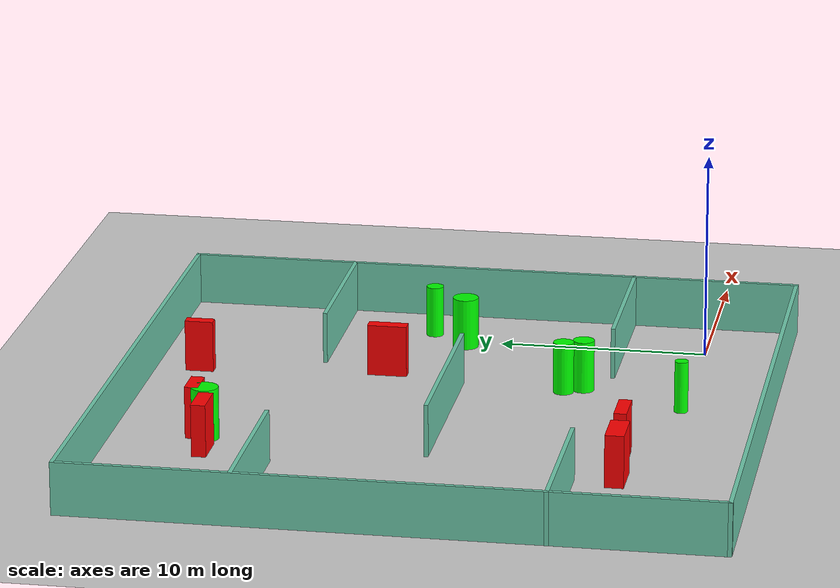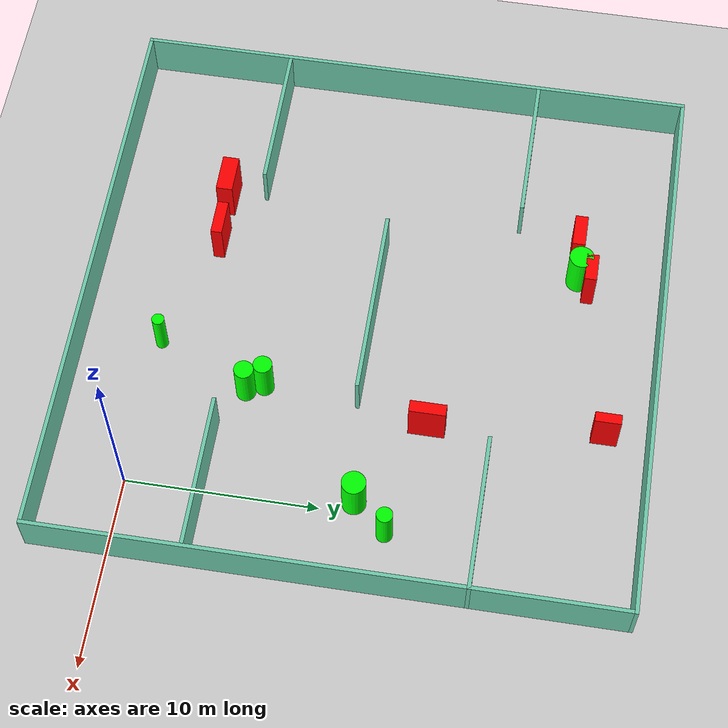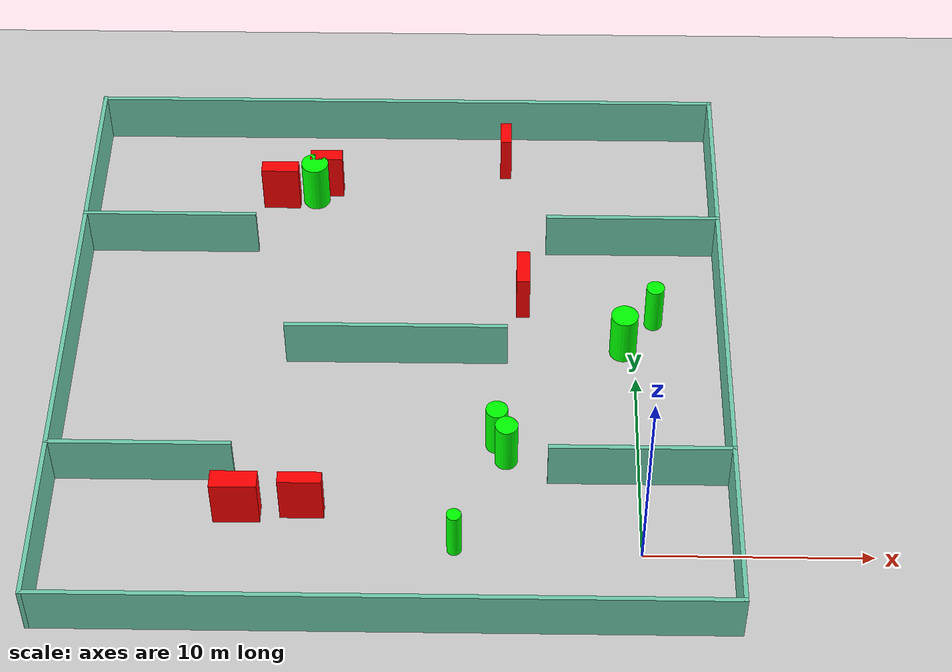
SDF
<sdf version="1.7">
 <world name="default">
  <light name="sun" type="directional">
   <pose>0 0 10 0 -0 0</pose>
   <diffuse>0.8 0.8 0.8 1</diffuse>
   <specular>0.2 0.2 0.2 1</specular>
   <attenuation>
    <range>1000</range>
    <constant>0.9</constant>
    <linear>0.01</linear>
    <quadratic>0.001</quadratic>
   </attenuation>
   <direction>-0.5 0.1 -0.9</direction>
   <spot><inner_angle>0</inner_angle><outer_angle>0</outer_angle><falloff>0</falloff></spot>
  </light>
  <model name="ground_plane">
   <static>1</static>
   <link name="link">
    <collision name="collision">
     <geometry><plane><normal>0 0 1</normal><size>100 100</size></plane></geometry>
     <surface>
      <contact><collide_bitmask>65535</collide_bitmask></contact>
      <friction><ode><mu>100</mu><mu2>50</mu2></ode></friction>
     </surface>
    </collision>
    <visual name="visual">
     <cast_shadows>0</cast_shadows>
     <geometry><plane><normal>0 0 1</normal><size>100 100</size></plane></geometry>
     <material>
      <script><uri>file://media/materials/scripts/gazebo.material</uri><name>Gazebo/Grey</name></script>
     </material>
    </visual>
   </link>
  </model>
  <gravity>0 0 -9.8</gravity>
  <magnetic_field>6e-06 2.3e-05 -4.2e-05</magnetic_field>
  <atmosphere type="adiabatic"/>
  <physics type="ode">
   <max_step_size>0.001</max_step_size>
   <real_time_factor>1</real_time_factor>
   <real_time_update_rate>1000</real_time_update_rate>
  </physics>
  <scene><ambient>0.4 0.4 0.4 1</ambient><background>0.7 0.7 0.7 1</background><shadows>1</shadows></scene>
  <spherical_coordinates>
   <surface_model>EARTH_WGS84</surface_model>
   <latitude_deg>0</latitude_deg>
   <longitude_deg>0</longitude_deg>
   <elevation>0</elevation>
   <heading_deg>0</heading_deg>
  </spherical_coordinates>
  <model name="my_base_walls">
   <link name="Wall_10">
    <collision name="Wall_10_Collision">
     <geometry><box><size>8.2 0.2 2.5</size></box></geometry>
     <pose>0 0 1.25 0 -0 0</pose>
    </collision>
    <visual name="Wall_10_Visual">
     <pose>0 0 1.25 0 -0 0</pose>
     <geometry><box><size>8.2 0.2 2.5</size></box></geometry>
     <material>
      <script><uri>file://media/materials/scripts/gazebo.material</uri><name>Gazebo/Grey</name></script>
      <ambient>0.435294 0.796078 0.67451 1</ambient>
     </material>
     <meta><layer>0</layer></meta>
    </visual>
    <pose>-11 -7 0 0 -0 0</pose>
   </link>
   <link name="Wall_12">
    <collision name="Wall_12_Collision">
     <geometry><box><size>8.2 0.2 2.5</size></box></geometry>
     <pose>0 0 1.25 0 -0 0</pose>
    </collision>
    <visual name="Wall_12_Visual">
     <pose>0 0 1.25 0 -0 0</pose>
     <geometry><box><size>8.2 0.2 2.5</size></box></geometry>
     <material>
      <script><uri>file://media/materials/scripts/gazebo.material</uri><name>Gazebo/Grey</name></script>
      <ambient>0.435294 0.796078 0.67451 1</ambient>
     </material>
     <meta><layer>0</layer></meta>
    </visual>
    <pose>-11 7 0 0 -0 0</pose>
   </link>
   <link name="Wall_14">
    <collision name="Wall_14_Collision">
     <geometry><box><size>8.2 0.2 2.5</size></box></geometry>
     <pose>0 0 1.25 0 -0 0</pose>
    </collision>
    <visual name="Wall_14_Visual">
     <pose>0 0 1.25 0 -0 0</pose>
     <geometry><box><size>8.2 0.2 2.5</size></box></geometry>
     <material>
      <script><uri>file://media/materials/scripts/gazebo.material</uri><name>Gazebo/Grey</name></script>
      <ambient>0.435294 0.796078 0.67451 1</ambient>
     </material>
     <meta><layer>0</layer></meta>
    </visual>
    <pose>11 7 0 0 -0 3.14159</pose>
   </link>
   <link name="Wall_16">
    <collision name="Wall_16_Collision">
     <geometry><box><size>10.2 0.2 2.5</size></box></geometry>
     <pose>0 0 1.25 0 -0 0</pose>
    </collision>
    <visual name="Wall_16_Visual">
     <pose>0 0 1.25 0 -0 0</pose>
     <geometry><box><size>10.2 0.2 2.5</size></box></geometry>
     <material>
      <script><uri>file://media/materials/scripts/gazebo.material</uri><name>Gazebo/Grey</name></script>
      <ambient>0.435294 0.796078 0.67451 1</ambient>
     </material>
     <meta><layer>0</layer></meta>
    </visual>
    <pose>0 0 0 0 -0 3.14159</pose>
   </link>
   <link name="Wall_2">
    <collision name="Wall_2_Collision">
     <geometry><box><size>30.2 0.2 2.5</size></box></geometry>
     <pose>0 0 1.25 0 -0 0</pose>
    </collision>
    <visual name="Wall_2_Visual">
     <pose>0 0 1.25 0 -0 0</pose>
     <geometry><box><size>30.2 0.2 2.5</size></box></geometry>
     <material>
      <script><uri>file://media/materials/scripts/gazebo.material</uri><name>Gazebo/Grey</name></script>
      <ambient>0.435294 0.796078 0.67451 1</ambient>
     </material>
     <meta><layer>0</layer></meta>
    </visual>
    <pose>0 -15 0 0 -0 3.14159</pose>
   </link>
   <link name="Wall_3">
    <collision name="Wall_3_Collision">
     <geometry><box><size>30.2 0.2 2.5</size></box></geometry>
     <pose>0 0 1.25 0 -0 0</pose>
    </collision>
    <visual name="Wall_3_Visual">
     <pose>0 0 1.25 0 -0 0</pose>
     <geometry><box><size>30.2 0.2 2.5</size></box></geometry>
     <material>
      <script><uri>file://media/materials/scripts/gazebo.material</uri><name>Gazebo/Grey</name></script>
      <ambient>0.435294 0.796078 0.67451 1</ambient>
     </material>
     <meta><layer>0</layer></meta>
    </visual>
    <pose>-15 0 0 0 -0 1.5708</pose>
   </link>
   <link name="Wall_4">
    <collision name="Wall_4_Collision">
     <geometry><box><size>30.2 0.2 2.5</size></box></geometry>
     <pose>0 0 1.25 0 -0 0</pose>
    </collision>
    <visual name="Wall_4_Visual">
     <pose>0 0 1.25 0 -0 0</pose>
     <geometry><box><size>30.2 0.2 2.5</size></box></geometry>
     <material>
      <script><uri>file://media/materials/scripts/gazebo.material</uri><name>Gazebo/Grey</name></script>
      <ambient>0.435294 0.796078 0.67451 1</ambient>
     </material>
     <meta><layer>0</layer></meta>
    </visual>
    <pose>0 15 0 0 -0 0</pose>
   </link>
   <link name="Wall_6">
    <collision name="Wall_6_Collision">
     <geometry><box><size>30.2 0.2 2.5</size></box></geometry>
     <pose>0 0 1.25 0 -0 0</pose>
    </collision>
    <visual name="Wall_6_Visual">
     <pose>0 0 1.25 0 -0 0</pose>
     <geometry><box><size>30.2 0.2 2.5</size></box></geometry>
     <material>
      <script><uri>file://media/materials/scripts/gazebo.material</uri><name>Gazebo/Grey</name></script>
      <ambient>0.435294 0.796078 0.67451 1</ambient>
     </material>
     <meta><layer>0</layer></meta>
    </visual>
    <pose>15 0 0 0 -0 1.5708</pose>
   </link>
   <link name="Wall_8">
    <collision name="Wall_8_Collision">
     <geometry><box><size>8.2 0.2 2.5</size></box></geometry>
     <pose>0 0 1.25 0 -0 0</pose>
    </collision>
    <visual name="Wall_8_Visual">
     <pose>0 0 1.25 0 -0 0</pose>
     <geometry><box><size>8.2 0.2 2.5</size></box></geometry>
     <material>
      <script><uri>file://media/materials/scripts/gazebo.material</uri><name>Gazebo/Grey</name></script>
      <ambient>0.435294 0.796078 0.67451 1</ambient>
     </material>
     <meta><layer>0</layer></meta>
    </visual>
    <pose>11 -7 0 0 -0 3.14159</pose>
   </link>
   <static>1</static>
   <pose>-11 11 0 0 -0 0</pose>
  </model>
  <model name="cylinder1">
   <static>1</static>
   <link name="link">
    <inertial>
     <mass>1</mass>
     <inertia><ixx>0.5</ixx><ixy>0</ixy><ixz>0</ixz><iyy>0.5</iyy><iyz>0</iyz><izz>1</izz></inertia>
    </inertial>
    <collision name="collision">
     <geometry><cylinder><radius>0.6226337722972185</radius><length>2.5</length></cylinder></geometry>
    </collision>
    <visual name="visual">
     <geometry><cylinder><radius>0.6226337722972185</radius><length>2.5</length></cylinder></geometry>
     <material>
      <ambient>0 1 0 1</ambient>
      <diffuse>0 1 0 1</diffuse>
      <specular>0.1 0.1 0.1 1</specular>
      <emissive>0 0 0 0</emissive>
     </material>
    </visual>
   </link>
   <pose>-0.5543706143982732 11.695774323665951 1.25 0 0 0</pose>
  </model>
  <model name="cylinder2">
   <static>1</static>
   <link name="link">
    <inertial>
     <mass>1</mass>
     <inertia><ixx>0.5</ixx><ixy>0</ixy><ixz>0</ixz><iyy>0.5</iyy><iyz>0</iyz><izz>1</izz></inertia>
    </inertial>
    <collision name="collision">
     <geometry><cylinder><radius>0.4180916426089021</radius><length>2.5</length></cylinder></geometry>
    </collision>
    <visual name="visual">
     <geometry><cylinder><radius>0.4180916426089021</radius><length>2.5</length></cylinder></geometry>
     <material>
      <ambient>0 1 0 1</ambient>
      <diffuse>0 1 0 1</diffuse>
      <specular>0.1 0.1 0.1 1</specular>
      <emissive>0 0 0 0</emissive>
     </material>
    </visual>
   </link>
   <pose>0.906775966129878 13.453941803256967 1.25 0 0 0</pose>
  </model>
  <model name="cylinder3">
   <static>1</static>
   <link name="link">
    <inertial>
     <mass>1</mass>
     <inertia><ixx>0.5</ixx><ixy>0</ixy><ixz>0</ixz><iyy>0.5</iyy><iyz>0</iyz><izz>1</izz></inertia>
    </inertial>
    <collision name="collision">
     <geometry><cylinder><radius>0.6453794042468785</radius><length>2.5</length></cylinder></geometry>
    </collision>
    <visual name="visual">
     <geometry><cylinder><radius>0.6453794042468785</radius><length>2.5</length></cylinder></geometry>
     <material>
      <ambient>0 1 0 1</ambient>
      <diffuse>0 1 0 1</diffuse>
      <specular>0.1 0.1 0.1 1</specular>
      <emissive>0 0 0 0</emissive>
     </material>
    </visual>
   </link>
   <pose>-15.312652839666455 21.478742045513666 1.25 0 0 0</pose>
  </model>
  <model name="cylinder4">
   <static>1</static>
   <link name="link">
    <inertial>
     <mass>1</mass>
     <inertia><ixx>0.5</ixx><ixy>0</ixy><ixz>0</ixz><iyy>0.5</iyy><iyz>0</iyz><izz>1</izz></inertia>
    </inertial>
    <collision name="collision">
     <geometry><cylinder><radius>0.4920467671813754</radius><length>2.5</length></cylinder></geometry>
    </collision>
    <visual name="visual">
     <geometry><cylinder><radius>0.4920467671813754</radius><length>2.5</length></cylinder></geometry>
     <material>
      <ambient>0 1 0 1</ambient>
      <diffuse>0 1 0 1</diffuse>
      <specular>0.1 0.1 0.1 1</specular>
      <emissive>0 0 0 0</emissive>
     </material>
    </visual>
   </link>
   <pose>-6.355563396975615 6.0548932884949735 1.25 0 0 0</pose>
  </model>
  <model name="cylinder5">
   <static>1</static>
   <link name="link">
    <inertial>
     <mass>1</mass>
     <inertia><ixx>0.5</ixx><ixy>0</ixy><ixz>0</ixz><iyy>0.5</iyy><iyz>0</iyz><izz>1</izz></inertia>
    </inertial>
    <collision name="collision">
     <geometry><cylinder><radius>0.5088304692135824</radius><length>2.5</length></cylinder></geometry>
    </collision>
    <visual name="visual">
     <geometry><cylinder><radius>0.5088304692135824</radius><length>2.5</length></cylinder></geometry>
     <material>
      <ambient>0 1 0 1</ambient>
      <diffuse>0 1 0 1</diffuse>
      <specular>0.1 0.1 0.1 1</specular>
      <emissive>0 0 0 0</emissive>
     </material>
    </visual>
   </link>
   <pose>-5.9195908336919025 5.1520897850829925 1.25 0 0 0</pose>
  </model>
  <model name="cylinder6">
   <static>1</static>
   <link name="link">
    <inertial>
     <mass>1</mass>
     <inertia><ixx>0.5</ixx><ixy>0</ixy><ixz>0</ixz><iyy>0.5</iyy><iyz>0</iyz><izz>1</izz></inertia>
    </inertial>
    <collision name="collision">
     <geometry><cylinder><radius>0.32512513509126817</radius><length>2.5</length></cylinder></geometry>
    </collision>
    <visual name="visual">
     <geometry><cylinder><radius>0.32512513509126817</radius><length>2.5</length></cylinder></geometry>
     <material>
      <ambient>0 1 0 1</ambient>
      <diffuse>0 1 0 1</diffuse>
      <specular>0.1 0.1 0.1 1</specular>
      <emissive>0 0 0 0</emissive>
     </material>
    </visual>
   </link>
   <pose>-8.135513989385704 0.2276874717557158 1.25 0 0 0</pose>
  </model>
  <model name="box1">
   <static>1</static>
   <link name="link">
    <inertial>
     <mass>1</mass>
     <inertia><ixx>0.083</ixx><ixy>0</ixy><ixz>0</ixz><iyy>0.083</iyy><iyz>0</iyz><izz>0.083</izz></inertia>
    </inertial>
    <collision name="collision">
     <geometry><box><size>1.5339318622539773 0.6388074053259454 2.5</size></box></geometry>
    </collision>
    <visual name="visual">
     <geometry><box><size>1.5339318622539773 0.6388074053259454 2.5</size></box></geometry>
     <material>
      <ambient>1 0 0 1</ambient>
      <diffuse>1 0 0 1</diffuse>
      <specular>0.1 0.1 0.1 1</specular>
      <emissive>0 0 0 0</emissive>
     </material>
    </visual>
    <sensor name="my_contact" type="contact">
     <contact><collision>box_collision</collision><topic>__default_topic__</topic></contact>
    </sensor>
   </link>
   <pose>-14.780166984581921 22.063178249810285 1.25 0 0 0</pose>
  </model>
  <model name="box2">
   <static>1</static>
   <link name="link">
    <inertial>
     <mass>1</mass>
     <inertia><ixx>0.083</ixx><ixy>0</ixy><ixz>0</ixz><iyy>0.083</iyy><iyz>0</iyz><izz>0.083</izz></inertia>
    </inertial>
    <collision name="collision">
     <geometry><box><size>0.5323715510487389 1.3595439680543464 2.5</size></box></geometry>
    </collision>
    <visual name="visual">
     <geometry><box><size>0.5323715510487389 1.3595439680543464 2.5</size></box></geometry>
     <material>
      <ambient>1 0 0 1</ambient>
      <diffuse>1 0 0 1</diffuse>
      <specular>0.1 0.1 0.1 1</specular>
      <emissive>0 0 0 0</emissive>
     </material>
    </visual>
    <sensor name="my_contact" type="contact">
     <contact><collision>box_collision</collision><topic>__default_topic__</topic></contact>
    </sensor>
   </link>
   <pose>-6.043527480172225 23.739006397695547 1.25 0 0 0</pose>
  </model>
  <model name="box3">
   <static>1</static>
   <link name="link">
    <inertial>
     <mass>1</mass>
     <inertia><ixx>0.083</ixx><ixy>0</ixy><ixz>0</ixz><iyy>0.083</iyy><iyz>0</iyz><izz>0.083</izz></inertia>
    </inertial>
    <collision name="collision">
     <geometry><box><size>2.0597503590572064 0.8845358166558794 2.5</size></box></geometry>
    </collision>
    <visual name="visual">
     <geometry><box><size>2.0597503590572064 0.8845358166558794 2.5</size></box></geometry>
     <material>
      <ambient>1 0 0 1</ambient>
      <diffuse>1 0 0 1</diffuse>
      <specular>0.1 0.1 0.1 1</specular>
      <emissive>0 0 0 0</emissive>
     </material>
    </visual>
    <sensor name="my_contact" type="contact">
     <contact><collision>box_collision</collision><topic>__default_topic__</topic></contact>
    </sensor>
   </link>
   <pose>-17.66070661129485 2.0137487624298345 1.25 0 0 0</pose>
  </model>
  <model name="box4">
   <static>1</static>
   <link name="link">
    <inertial>
     <mass>1</mass>
     <inertia><ixx>0.083</ixx><ixy>0</ixy><ixz>0</ixz><iyy>0.083</iyy><iyz>0</iyz><izz>0.083</izz></inertia>
    </inertial>
    <collision name="collision">
     <geometry><box><size>0.6212103089535222 1.8972890949404775 2.5</size></box></geometry>
    </collision>
    <visual name="visual">
     <geometry><box><size>0.6212103089535222 1.8972890949404775 2.5</size></box></geometry>
     <material>
      <ambient>1 0 0 1</ambient>
      <diffuse>1 0 0 1</diffuse>
      <specular>0.1 0.1 0.1 1</specular>
      <emissive>0 0 0 0</emissive>
     </material>
    </visual>
    <sensor name="my_contact" type="contact">
     <contact><collision>box_collision</collision><topic>__default_topic__</topic></contact>
    </sensor>
   </link>
   <pose>-5.190177134467845 14.720426812026183 1.25 0 0 0</pose>
  </model>
  <model name="box5">
   <static>1</static>
   <link name="link">
    <inertial>
     <mass>1</mass>
     <inertia><ixx>0.083</ixx><ixy>0</ixy><ixz>0</ixz><iyy>0.083</iyy><iyz>0</iyz><izz>0.083</izz></inertia>
    </inertial>
    <collision name="collision">
     <geometry><box><size>1.7711425866499844 0.6810341550787415 2.5</size></box></geometry>
    </collision>
    <visual name="visual">
     <geometry><box><size>1.7711425866499844 0.6810341550787415 2.5</size></box></geometry>
     <material>
      <ambient>1 0 0 1</ambient>
      <diffuse>1 0 0 1</diffuse>
      <specular>0.1 0.1 0.1 1</specular>
      <emissive>0 0 0 0</emissive>
     </material>
    </visual>
    <sensor name="my_contact" type="contact">
     <contact><collision>box_collision</collision><topic>__default_topic__</topic></contact>
    </sensor>
   </link>
   <pose>-16.972957305858298 21.238137483155754 1.25 0 0 0</pose>
  </model>
  <model name="box6">
   <static>1</static>
   <link name="link">
    <inertial>
     <mass>1</mass>
     <inertia><ixx>0.083</ixx><ixy>0</ixy><ixz>0</ixz><iyy>0.083</iyy><iyz>0</iyz><izz>0.083</izz></inertia>
    </inertial>
    <collision name="collision">
     <geometry><box><size>1.9230108837684485 0.5968577967952662 2.5</size></box></geometry>
    </collision>
    <visual name="visual">
     <geometry><box><size>1.9230108837684485 0.5968577967952662 2.5</size></box></geometry>
     <material>
      <ambient>1 0 0 1</ambient>
      <diffuse>1 0 0 1</diffuse>
      <specular>0.1 0.1 0.1 1</specular>
      <emissive>0 0 0 0</emissive>
     </material>
    </visual>
    <sensor name="my_contact" type="contact">
     <contact><collision>box_collision</collision><topic>__default_topic__</topic></contact>
    </sensor>
   </link>
   <pose>-14.816209328410753 2.138346065966486 1.25 0 0 0</pose>
  </model>
 </world>
</sdf>
